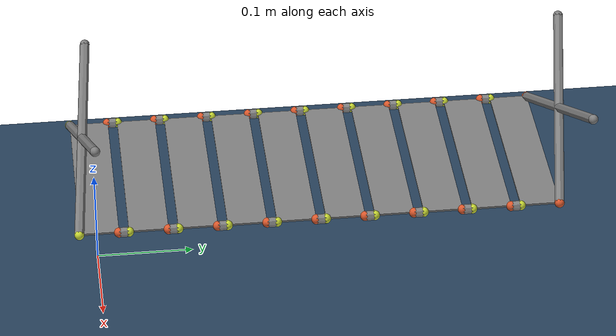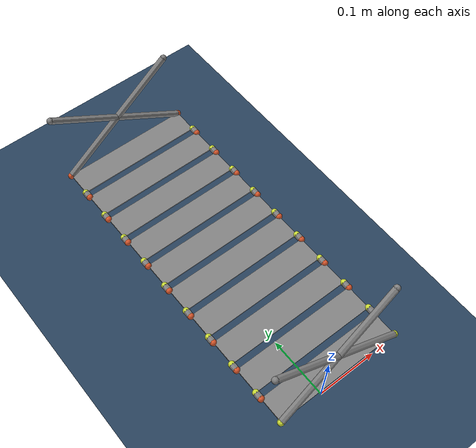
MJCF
<mujoco model="2f85 scene">
  <!-- Add some fluid viscosity to prevent the hanging box from jiggling forever -->
  <compiler angle="radian"/>

  <option viscosity="0.1"/>

  <visual>
    <global azimuth="60" elevation="-20"/>
    <headlight ambient="0.3 0.3 0.3" diffuse="0.6 0.6 0.6" specular="0 0 0"/>
    <rgba haze="0.15 0.25 0.35 1"/>
  </visual>

  <statistic extent="0.3" center="0 0 0.05"/>

  <default>
    <geom type="box"/>
  </default>

  <asset>
    <texture type="skybox" builtin="gradient" rgb1="0.3 0.5 0.7" rgb2="0 0 0" width="512" height="3072"/>
    <texture type="2d" name="groundplane" builtin="checker" mark="edge" rgb1="0.2 0.3 0.4" rgb2="0.1 0.2 0.3" markrgb="0.8 0.8 0.8" width="300" height="300"/>
    <material name="groundplane" texture="groundplane" texuniform="true" texrepeat="5 5" reflectance="0.2"/>
  </asset>

  <worldbody>
    <geom name="floor" size="0 0 0.05" type="plane" material="groundplane"/>
    <site name="wb_site_-1" pos="-0.1 0 0.2"/>
    <site name="wb_site_1" pos="0.1 0 0.2"/>
    <site name="we_site_-1" pos="-0.1 0.5 0.2"/>
    <site name="we_site_1" pos="0.1 0.5 0.2"/>
    <light pos="0 0 1" dir="0 0 -1"/>
    <light pos="0 -0.2 1" dir="0 0.242536 -0.970143" directional="true"/>
    <body name="bridge_0" pos="0 0 0.1">
      <joint type="free" limited="false" actuatorfrclimited="false"/>
      <geom size="0.1 0.02 0.001"/>
      <site name="b_l_s_0_-1" pos="0.1 -0.02 0" rgba="0.795 0.86 0.206 1"/>
      <site name="b_r_s_0_-1" pos="-0.1 -0.02 0" rgba="0.795 0.86 0.206 1"/>
      <site name="b_l_s_0_1" pos="0.1 0.02 0" rgba="0.87 0.348 0.174 1"/>
      <site name="b_r_s_0_1" pos="-0.1 0.02 0" rgba="0.87 0.348 0.174 1"/>
    </body>
    <body name="bridge_1" pos="0 0.05 0.1">
      <joint type="free" limited="false" actuatorfrclimited="false"/>
      <geom size="0.1 0.02 0.001"/>
      <site name="b_l_s_1_-1" pos="0.1 -0.02 0" rgba="0.795 0.86 0.206 1"/>
      <site name="b_r_s_1_-1" pos="-0.1 -0.02 0" rgba="0.795 0.86 0.206 1"/>
      <site name="b_l_s_1_1" pos="0.1 0.02 0" rgba="0.87 0.348 0.174 1"/>
      <site name="b_r_s_1_1" pos="-0.1 0.02 0" rgba="0.87 0.348 0.174 1"/>
    </body>
    <body name="bridge_2" pos="0 0.1 0.1">
      <joint type="free" limited="false" actuatorfrclimited="false"/>
      <geom size="0.1 0.02 0.001"/>
      <site name="b_l_s_2_-1" pos="0.1 -0.02 0" rgba="0.795 0.86 0.206 1"/>
      <site name="b_r_s_2_-1" pos="-0.1 -0.02 0" rgba="0.795 0.86 0.206 1"/>
      <site name="b_l_s_2_1" pos="0.1 0.02 0" rgba="0.87 0.348 0.174 1"/>
      <site name="b_r_s_2_1" pos="-0.1 0.02 0" rgba="0.87 0.348 0.174 1"/>
    </body>
    <body name="bridge_3" pos="0 0.15 0.1">
      <joint type="free" limited="false" actuatorfrclimited="false"/>
      <geom size="0.1 0.02 0.001"/>
      <site name="b_l_s_3_-1" pos="0.1 -0.02 0" rgba="0.795 0.86 0.206 1"/>
      <site name="b_r_s_3_-1" pos="-0.1 -0.02 0" rgba="0.795 0.86 0.206 1"/>
      <site name="b_l_s_3_1" pos="0.1 0.02 0" rgba="0.87 0.348 0.174 1"/>
      <site name="b_r_s_3_1" pos="-0.1 0.02 0" rgba="0.87 0.348 0.174 1"/>
    </body>
    <body name="bridge_4" pos="0 0.2 0.1">
      <joint type="free" limited="false" actuatorfrclimited="false"/>
      <geom size="0.1 0.02 0.001"/>
      <site name="b_l_s_4_-1" pos="0.1 -0.02 0" rgba="0.795 0.86 0.206 1"/>
      <site name="b_r_s_4_-1" pos="-0.1 -0.02 0" rgba="0.795 0.86 0.206 1"/>
      <site name="b_l_s_4_1" pos="0.1 0.02 0" rgba="0.87 0.348 0.174 1"/>
      <site name="b_r_s_4_1" pos="-0.1 0.02 0" rgba="0.87 0.348 0.174 1"/>
    </body>
    <body name="bridge_5" pos="0 0.25 0.1">
      <joint type="free" limited="false" actuatorfrclimited="false"/>
      <geom size="0.1 0.02 0.001"/>
      <site name="b_l_s_5_-1" pos="0.1 -0.02 0" rgba="0.795 0.86 0.206 1"/>
      <site name="b_r_s_5_-1" pos="-0.1 -0.02 0" rgba="0.795 0.86 0.206 1"/>
      <site name="b_l_s_5_1" pos="0.1 0.02 0" rgba="0.87 0.348 0.174 1"/>
      <site name="b_r_s_5_1" pos="-0.1 0.02 0" rgba="0.87 0.348 0.174 1"/>
    </body>
    <body name="bridge_6" pos="0 0.3 0.1">
      <joint type="free" limited="false" actuatorfrclimited="false"/>
      <geom size="0.1 0.02 0.001"/>
      <site name="b_l_s_6_-1" pos="0.1 -0.02 0" rgba="0.795 0.86 0.206 1"/>
      <site name="b_r_s_6_-1" pos="-0.1 -0.02 0" rgba="0.795 0.86 0.206 1"/>
      <site name="b_l_s_6_1" pos="0.1 0.02 0" rgba="0.87 0.348 0.174 1"/>
      <site name="b_r_s_6_1" pos="-0.1 0.02 0" rgba="0.87 0.348 0.174 1"/>
    </body>
    <body name="bridge_7" pos="0 0.35 0.1">
      <joint type="free" limited="false" actuatorfrclimited="false"/>
      <geom size="0.1 0.02 0.001"/>
      <site name="b_l_s_7_-1" pos="0.1 -0.02 0" rgba="0.795 0.86 0.206 1"/>
      <site name="b_r_s_7_-1" pos="-0.1 -0.02 0" rgba="0.795 0.86 0.206 1"/>
      <site name="b_l_s_7_1" pos="0.1 0.02 0" rgba="0.87 0.348 0.174 1"/>
      <site name="b_r_s_7_1" pos="-0.1 0.02 0" rgba="0.87 0.348 0.174 1"/>
    </body>
    <body name="bridge_8" pos="0 0.4 0.1">
      <joint type="free" limited="false" actuatorfrclimited="false"/>
      <geom size="0.1 0.02 0.001"/>
      <site name="b_l_s_8_-1" pos="0.1 -0.02 0" rgba="0.795 0.86 0.206 1"/>
      <site name="b_r_s_8_-1" pos="-0.1 -0.02 0" rgba="0.795 0.86 0.206 1"/>
      <site name="b_l_s_8_1" pos="0.1 0.02 0" rgba="0.87 0.348 0.174 1"/>
      <site name="b_r_s_8_1" pos="-0.1 0.02 0" rgba="0.87 0.348 0.174 1"/>
    </body>
    <body name="bridge_9" pos="0 0.45 0.1">
      <joint type="free" limited="false" actuatorfrclimited="false"/>
      <geom size="0.1 0.02 0.001"/>
      <site name="b_l_s_9_-1" pos="0.1 -0.02 0" rgba="0.795 0.86 0.206 1"/>
      <site name="b_r_s_9_-1" pos="-0.1 -0.02 0" rgba="0.795 0.86 0.206 1"/>
      <site name="b_l_s_9_1" pos="0.1 0.02 0" rgba="0.87 0.348 0.174 1"/>
      <site name="b_r_s_9_1" pos="-0.1 0.02 0" rgba="0.87 0.348 0.174 1"/>
    </body>
  </worldbody>

  <tendon>
    <spatial name="bridge_thread_0_0" limited="true" range="0 0.005" width="0.005">
      <site site="wb_site_-1"/>
      <site site="b_l_s_0_-1"/>
    </spatial>
    <spatial name="bridge_thread_0_1" limited="true" range="0 0.005" width="0.005">
      <site site="wb_site_1"/>
      <site site="b_r_s_0_-1"/>
    </spatial>
    <spatial name="bridge_thread_1_0" limited="true" range="0 0.005" width="0.005">
      <site site="b_l_s_0_1"/>
      <site site="b_l_s_1_-1"/>
    </spatial>
    <spatial name="bridge_thread_1_1" limited="true" range="0 0.005" width="0.005">
      <site site="b_r_s_0_1"/>
      <site site="b_r_s_1_-1"/>
    </spatial>
    <spatial name="bridge_thread_2_0" limited="true" range="0 0.005" width="0.005">
      <site site="b_l_s_1_1"/>
      <site site="b_l_s_2_-1"/>
    </spatial>
    <spatial name="bridge_thread_2_1" limited="true" range="0 0.005" width="0.005">
      <site site="b_r_s_1_1"/>
      <site site="b_r_s_2_-1"/>
    </spatial>
    <spatial name="bridge_thread_3_0" limited="true" range="0 0.005" width="0.005">
      <site site="b_l_s_2_1"/>
      <site site="b_l_s_3_-1"/>
    </spatial>
    <spatial name="bridge_thread_3_1" limited="true" range="0 0.005" width="0.005">
      <site site="b_r_s_2_1"/>
      <site site="b_r_s_3_-1"/>
    </spatial>
    <spatial name="bridge_thread_4_0" limited="true" range="0 0.005" width="0.005">
      <site site="b_l_s_3_1"/>
      <site site="b_l_s_4_-1"/>
    </spatial>
    <spatial name="bridge_thread_4_1" limited="true" range="0 0.005" width="0.005">
      <site site="b_r_s_3_1"/>
      <site site="b_r_s_4_-1"/>
    </spatial>
    <spatial name="bridge_thread_5_0" limited="true" range="0 0.005" width="0.005">
      <site site="b_l_s_4_1"/>
      <site site="b_l_s_5_-1"/>
    </spatial>
    <spatial name="bridge_thread_5_1" limited="true" range="0 0.005" width="0.005">
      <site site="b_r_s_4_1"/>
      <site site="b_r_s_5_-1"/>
    </spatial>
    <spatial name="bridge_thread_6_0" limited="true" range="0 0.005" width="0.005">
      <site site="b_l_s_5_1"/>
      <site site="b_l_s_6_-1"/>
    </spatial>
    <spatial name="bridge_thread_6_1" limited="true" range="0 0.005" width="0.005">
      <site site="b_r_s_5_1"/>
      <site site="b_r_s_6_-1"/>
    </spatial>
    <spatial name="bridge_thread_7_0" limited="true" range="0 0.005" width="0.005">
      <site site="b_l_s_6_1"/>
      <site site="b_l_s_7_-1"/>
    </spatial>
    <spatial name="bridge_thread_7_1" limited="true" range="0 0.005" width="0.005">
      <site site="b_r_s_6_1"/>
      <site site="b_r_s_7_-1"/>
    </spatial>
    <spatial name="bridge_thread_8_0" limited="true" range="0 0.005" width="0.005">
      <site site="b_l_s_7_1"/>
      <site site="b_l_s_8_-1"/>
    </spatial>
    <spatial name="bridge_thread_8_1" limited="true" range="0 0.005" width="0.005">
      <site site="b_r_s_7_1"/>
      <site site="b_r_s_8_-1"/>
    </spatial>
    <spatial name="bridge_thread_9_0" limited="true" range="0 0.005" width="0.005">
      <site site="b_l_s_8_1"/>
      <site site="b_l_s_9_-1"/>
    </spatial>
    <spatial name="bridge_thread_9_1" limited="true" range="0 0.005" width="0.005">
      <site site="b_r_s_8_1"/>
      <site site="b_r_s_9_-1"/>
    </spatial>
    <spatial name="bridge_end_thread_9_0" limited="true" range="0 0.005" width="0.005">
      <site site="b_l_s_9_1"/>
      <site site="we_site_-1"/>
    </spatial>
    <spatial name="bridge_end_thread_9_1" limited="true" range="0 0.005" width="0.005">
      <site site="b_r_s_9_1"/>
      <site site="we_site_1"/>
    </spatial>
  </tendon>
</mujoco>
